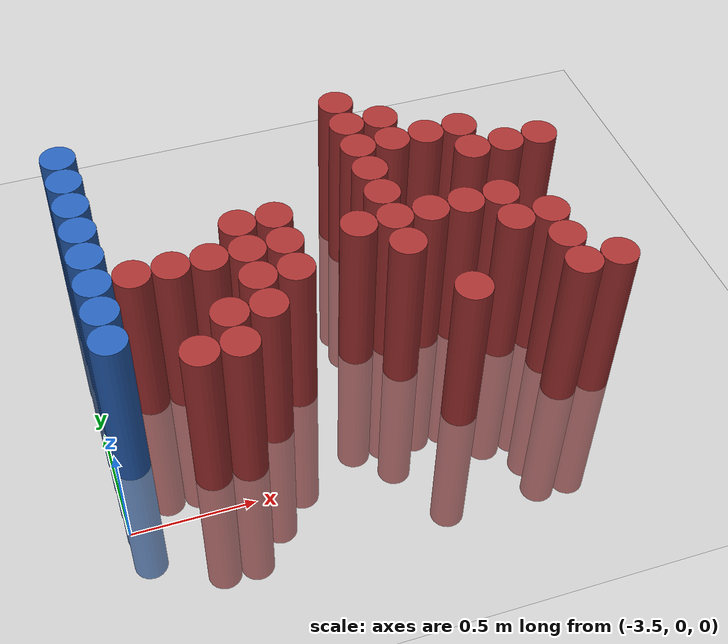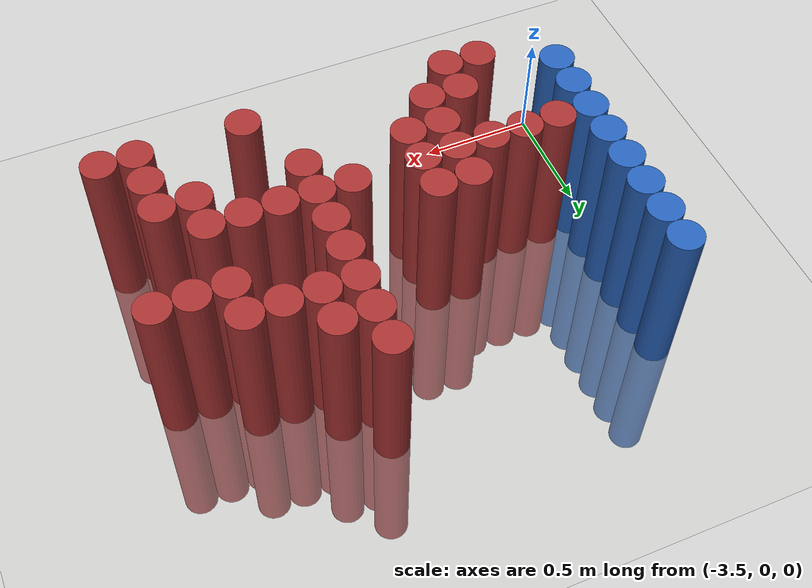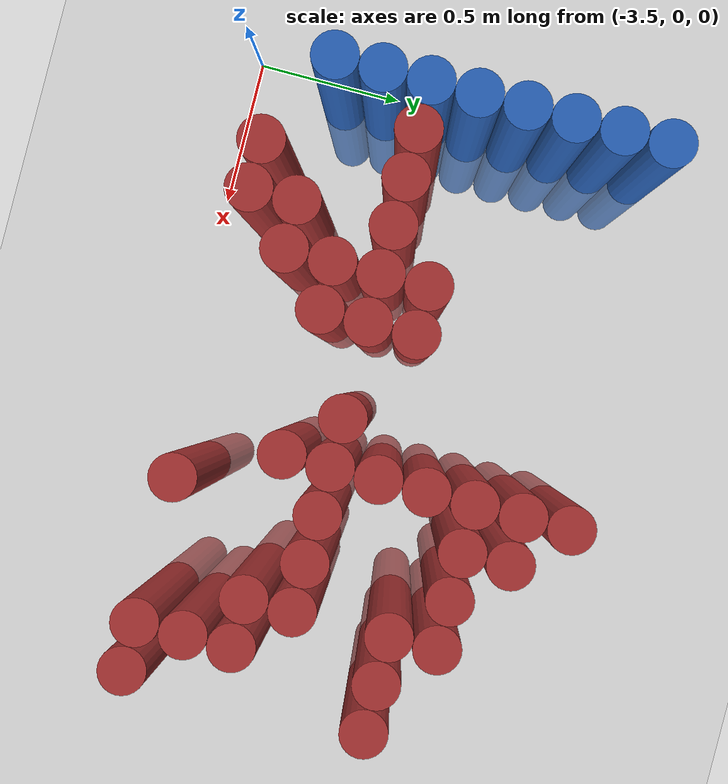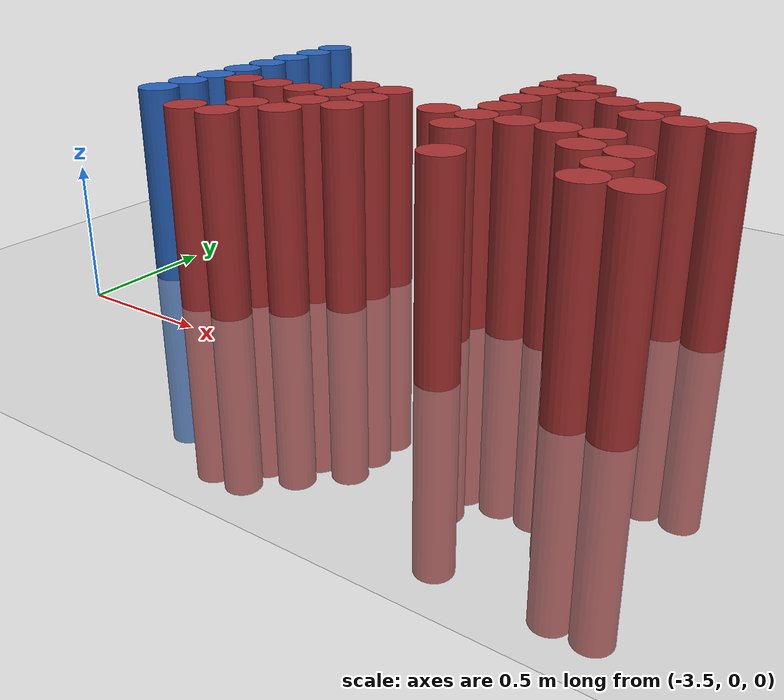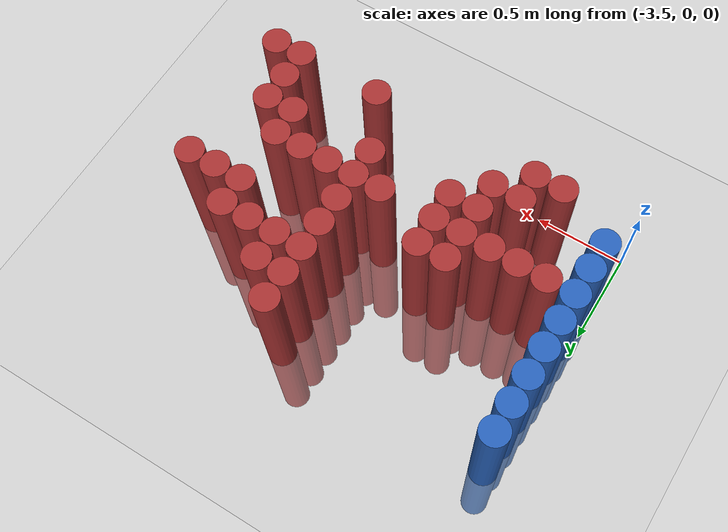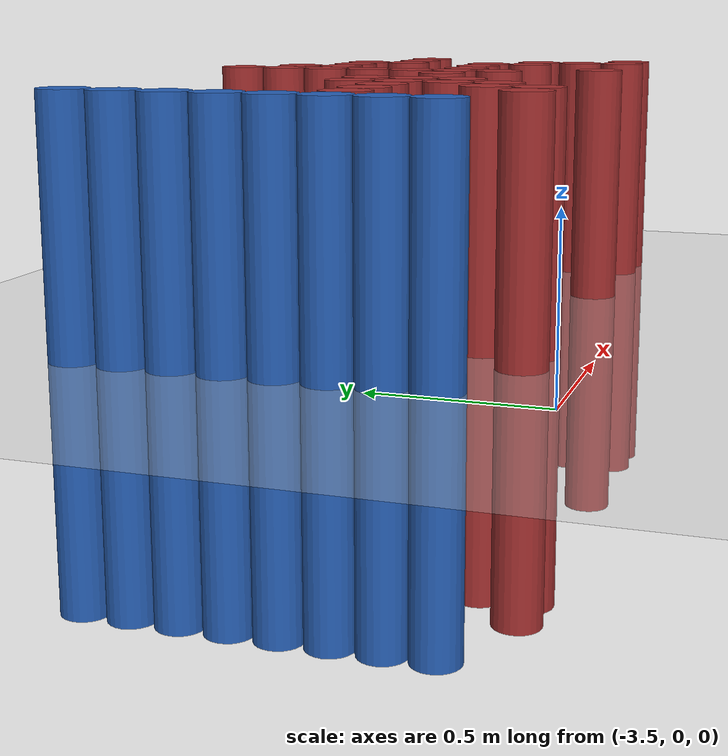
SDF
<sdf version="1.6">
 <world name="default">
  <model name="ground_plane">
   <static>1</static>
   <link name="link">
    <collision name="collision">
     <geometry><plane><normal>0 0 1</normal><size>100 100</size></plane></geometry>
     <surface><friction><ode><mu>100</mu><mu2>50</mu2></ode></friction></surface>
    </collision>
    <visual name="visual">
     <cast_shadows>0</cast_shadows>
     <geometry><plane><normal>0 0 1</normal><size>100 100</size></plane></geometry>
     <material>
      <script><uri>file://media/materials/scripts/gazebo.material</uri><name>Gazebo/Grey</name></script>
     </material>
    </visual>
   </link>
  </model>
  <model name="unit_cylinder_119">
   <static>1</static>
   <pose>-3.425000 0.325000 0.000000 0.000000 0.000000 0.000000</pose>
   <link name="link">
    <inertial>
     <mass>1</mass>
     <inertia><ixx>0.145833</ixx><ixy>0</ixy><ixz>0</ixz><iyy>0.145833</iyy><iyz>0</iyz><izz>0.125</izz></inertia>
    </inertial>
    <collision name="collision">
     <geometry><cylinder><radius>0.075000</radius><length>1.5</length></cylinder></geometry>
    </collision>
    <visual name="visual">
     <geometry><cylinder><radius>0.075000</radius><length>1.5</length></cylinder></geometry>
     <material>
      <ambient>0.152000 0.379000 0.720000 1</ambient>
      <diffuse>0.152000 0.379000 0.720000 1</diffuse>
     </material>
     <material>
      <script><name>Gazebo/Grey</name><uri>file://media/materials/scripts/gazebo.material</uri></script>
     </material>
    </visual>
   </link>
  </model>
  <model name="unit_cylinder_121">
   <static>1</static>
   <pose>-3.425000 0.475000 0.000000 0.000000 0.000000 0.000000</pose>
   <link name="link">
    <inertial>
     <mass>1</mass>
     <inertia><ixx>0.145833</ixx><ixy>0</ixy><ixz>0</ixz><iyy>0.145833</iyy><iyz>0</iyz><izz>0.125</izz></inertia>
    </inertial>
    <collision name="collision">
     <geometry><cylinder><radius>0.075000</radius><length>1.5</length></cylinder></geometry>
    </collision>
    <visual name="visual">
     <geometry><cylinder><radius>0.075000</radius><length>1.5</length></cylinder></geometry>
     <material>
      <ambient>0.152000 0.379000 0.720000 1</ambient>
      <diffuse>0.152000 0.379000 0.720000 1</diffuse>
     </material>
     <material>
      <script><name>Gazebo/Grey</name><uri>file://media/materials/scripts/gazebo.material</uri></script>
     </material>
    </visual>
   </link>
  </model>
  <model name="unit_cylinder_123">
   <static>1</static>
   <pose>-3.425000 0.625000 0.000000 0.000000 0.000000 0.000000</pose>
   <link name="link">
    <inertial>
     <mass>1</mass>
     <inertia><ixx>0.145833</ixx><ixy>0</ixy><ixz>0</ixz><iyy>0.145833</iyy><iyz>0</iyz><izz>0.125</izz></inertia>
    </inertial>
    <collision name="collision">
     <geometry><cylinder><radius>0.075000</radius><length>1.5</length></cylinder></geometry>
    </collision>
    <visual name="visual">
     <geometry><cylinder><radius>0.075000</radius><length>1.5</length></cylinder></geometry>
     <material>
      <ambient>0.152000 0.379000 0.720000 1</ambient>
      <diffuse>0.152000 0.379000 0.720000 1</diffuse>
     </material>
     <material>
      <script><name>Gazebo/Grey</name><uri>file://media/materials/scripts/gazebo.material</uri></script>
     </material>
    </visual>
   </link>
  </model>
  <model name="unit_cylinder_125">
   <static>1</static>
   <pose>-3.425000 0.775000 0.000000 0.000000 0.000000 0.000000</pose>
   <link name="link">
    <inertial>
     <mass>1</mass>
     <inertia><ixx>0.145833</ixx><ixy>0</ixy><ixz>0</ixz><iyy>0.145833</iyy><iyz>0</iyz><izz>0.125</izz></inertia>
    </inertial>
    <collision name="collision">
     <geometry><cylinder><radius>0.075000</radius><length>1.5</length></cylinder></geometry>
    </collision>
    <visual name="visual">
     <geometry><cylinder><radius>0.075000</radius><length>1.5</length></cylinder></geometry>
     <material>
      <ambient>0.152000 0.379000 0.720000 1</ambient>
      <diffuse>0.152000 0.379000 0.720000 1</diffuse>
     </material>
     <material>
      <script><name>Gazebo/Grey</name><uri>file://media/materials/scripts/gazebo.material</uri></script>
     </material>
    </visual>
   </link>
  </model>
  <model name="unit_cylinder_127">
   <static>1</static>
   <pose>-3.425000 0.925000 0.000000 0.000000 0.000000 0.000000</pose>
   <link name="link">
    <inertial>
     <mass>1</mass>
     <inertia><ixx>0.145833</ixx><ixy>0</ixy><ixz>0</ixz><iyy>0.145833</iyy><iyz>0</iyz><izz>0.125</izz></inertia>
    </inertial>
    <collision name="collision">
     <geometry><cylinder><radius>0.075000</radius><length>1.5</length></cylinder></geometry>
    </collision>
    <visual name="visual">
     <geometry><cylinder><radius>0.075000</radius><length>1.5</length></cylinder></geometry>
     <material>
      <ambient>0.152000 0.379000 0.720000 1</ambient>
      <diffuse>0.152000 0.379000 0.720000 1</diffuse>
     </material>
     <material>
      <script><name>Gazebo/Grey</name><uri>file://media/materials/scripts/gazebo.material</uri></script>
     </material>
    </visual>
   </link>
  </model>
  <model name="unit_cylinder_129">
   <static>1</static>
   <pose>-3.425000 1.075000 0.000000 0.000000 0.000000 0.000000</pose>
   <link name="link">
    <inertial>
     <mass>1</mass>
     <inertia><ixx>0.145833</ixx><ixy>0</ixy><ixz>0</ixz><iyy>0.145833</iyy><iyz>0</iyz><izz>0.125</izz></inertia>
    </inertial>
    <collision name="collision">
     <geometry><cylinder><radius>0.075000</radius><length>1.5</length></cylinder></geometry>
    </collision>
    <visual name="visual">
     <geometry><cylinder><radius>0.075000</radius><length>1.5</length></cylinder></geometry>
     <material>
      <ambient>0.152000 0.379000 0.720000 1</ambient>
      <diffuse>0.152000 0.379000 0.720000 1</diffuse>
     </material>
     <material>
      <script><name>Gazebo/Grey</name><uri>file://media/materials/scripts/gazebo.material</uri></script>
     </material>
    </visual>
   </link>
  </model>
  <model name="unit_cylinder_131">
   <static>1</static>
   <pose>-3.425000 1.225000 0.000000 0.000000 0.000000 0.000000</pose>
   <link name="link">
    <inertial>
     <mass>1</mass>
     <inertia><ixx>0.145833</ixx><ixy>0</ixy><ixz>0</ixz><iyy>0.145833</iyy><iyz>0</iyz><izz>0.125</izz></inertia>
    </inertial>
    <collision name="collision">
     <geometry><cylinder><radius>0.075000</radius><length>1.5</length></cylinder></geometry>
    </collision>
    <visual name="visual">
     <geometry><cylinder><radius>0.075000</radius><length>1.5</length></cylinder></geometry>
     <material>
      <ambient>0.152000 0.379000 0.720000 1</ambient>
      <diffuse>0.152000 0.379000 0.720000 1</diffuse>
     </material>
     <material>
      <script><name>Gazebo/Grey</name><uri>file://media/materials/scripts/gazebo.material</uri></script>
     </material>
    </visual>
   </link>
  </model>
  <model name="unit_cylinder_133">
   <static>1</static>
   <pose>-3.425000 1.375000 0.000000 0.000000 0.000000 0.000000</pose>
   <link name="link">
    <inertial>
     <mass>1</mass>
     <inertia><ixx>0.145833</ixx><ixy>0</ixy><ixz>0</ixz><iyy>0.145833</iyy><iyz>0</iyz><izz>0.125</izz></inertia>
    </inertial>
    <collision name="collision">
     <geometry><cylinder><radius>0.075000</radius><length>1.5</length></cylinder></geometry>
    </collision>
    <visual name="visual">
     <geometry><cylinder><radius>0.075000</radius><length>1.5</length></cylinder></geometry>
     <material>
      <ambient>0.152000 0.379000 0.720000 1</ambient>
      <diffuse>0.152000 0.379000 0.720000 1</diffuse>
     </material>
     <material>
      <script><name>Gazebo/Grey</name><uri>file://media/materials/scripts/gazebo.material</uri></script>
     </material>
    </visual>
   </link>
  </model>
  <model name="unit_cylinder_223">
   <static>1</static>
   <pose>-3.425000 0.325000 0.000000 0.000000 0.000000 0.000000</pose>
   <link name="link">
    <inertial>
     <mass>1</mass>
     <inertia><ixx>0.145833</ixx><ixy>0</ixy><ixz>0</ixz><iyy>0.145833</iyy><iyz>0</iyz><izz>0.125</izz></inertia>
    </inertial>
    <collision name="collision">
     <geometry><cylinder><radius>0.075000</radius><length>1.5</length></cylinder></geometry>
    </collision>
    <visual name="visual">
     <geometry><cylinder><radius>0.075000</radius><length>1.5</length></cylinder></geometry>
     <material>
      <ambient>0.152000 0.379000 0.720000 1</ambient>
      <diffuse>0.152000 0.379000 0.720000 1</diffuse>
     </material>
     <material>
      <script><name>Gazebo/Grey</name><uri>file://media/materials/scripts/gazebo.material</uri></script>
     </material>
    </visual>
   </link>
  </model>
  <model name="unit_cylinder_224">
   <static>1</static>
   <pose>-3.425000 0.475000 0.000000 0.000000 0.000000 0.000000</pose>
   <link name="link">
    <inertial>
     <mass>1</mass>
     <inertia><ixx>0.145833</ixx><ixy>0</ixy><ixz>0</ixz><iyy>0.145833</iyy><iyz>0</iyz><izz>0.125</izz></inertia>
    </inertial>
    <collision name="collision">
     <geometry><cylinder><radius>0.075000</radius><length>1.5</length></cylinder></geometry>
    </collision>
    <visual name="visual">
     <geometry><cylinder><radius>0.075000</radius><length>1.5</length></cylinder></geometry>
     <material>
      <ambient>0.152000 0.379000 0.720000 1</ambient>
      <diffuse>0.152000 0.379000 0.720000 1</diffuse>
     </material>
     <material>
      <script><name>Gazebo/Grey</name><uri>file://media/materials/scripts/gazebo.material</uri></script>
     </material>
    </visual>
   </link>
  </model>
  <model name="unit_cylinder_225">
   <static>1</static>
   <pose>-3.425000 0.625000 0.000000 0.000000 0.000000 0.000000</pose>
   <link name="link">
    <inertial>
     <mass>1</mass>
     <inertia><ixx>0.145833</ixx><ixy>0</ixy><ixz>0</ixz><iyy>0.145833</iyy><iyz>0</iyz><izz>0.125</izz></inertia>
    </inertial>
    <collision name="collision">
     <geometry><cylinder><radius>0.075000</radius><length>1.5</length></cylinder></geometry>
    </collision>
    <visual name="visual">
     <geometry><cylinder><radius>0.075000</radius><length>1.5</length></cylinder></geometry>
     <material>
      <ambient>0.152000 0.379000 0.720000 1</ambient>
      <diffuse>0.152000 0.379000 0.720000 1</diffuse>
     </material>
     <material>
      <script><name>Gazebo/Grey</name><uri>file://media/materials/scripts/gazebo.material</uri></script>
     </material>
    </visual>
   </link>
  </model>
  <model name="unit_cylinder_226">
   <static>1</static>
   <pose>-3.425000 0.775000 0.000000 0.000000 0.000000 0.000000</pose>
   <link name="link">
    <inertial>
     <mass>1</mass>
     <inertia><ixx>0.145833</ixx><ixy>0</ixy><ixz>0</ixz><iyy>0.145833</iyy><iyz>0</iyz><izz>0.125</izz></inertia>
    </inertial>
    <collision name="collision">
     <geometry><cylinder><radius>0.075000</radius><length>1.5</length></cylinder></geometry>
    </collision>
    <visual name="visual">
     <geometry><cylinder><radius>0.075000</radius><length>1.5</length></cylinder></geometry>
     <material>
      <ambient>0.152000 0.379000 0.720000 1</ambient>
      <diffuse>0.152000 0.379000 0.720000 1</diffuse>
     </material>
     <material>
      <script><name>Gazebo/Grey</name><uri>file://media/materials/scripts/gazebo.material</uri></script>
     </material>
    </visual>
   </link>
  </model>
  <model name="unit_cylinder_227">
   <static>1</static>
   <pose>-3.425000 0.925000 0.000000 0.000000 0.000000 0.000000</pose>
   <link name="link">
    <inertial>
     <mass>1</mass>
     <inertia><ixx>0.145833</ixx><ixy>0</ixy><ixz>0</ixz><iyy>0.145833</iyy><iyz>0</iyz><izz>0.125</izz></inertia>
    </inertial>
    <collision name="collision">
     <geometry><cylinder><radius>0.075000</radius><length>1.5</length></cylinder></geometry>
    </collision>
    <visual name="visual">
     <geometry><cylinder><radius>0.075000</radius><length>1.5</length></cylinder></geometry>
     <material>
      <ambient>0.152000 0.379000 0.720000 1</ambient>
      <diffuse>0.152000 0.379000 0.720000 1</diffuse>
     </material>
     <material>
      <script><name>Gazebo/Grey</name><uri>file://media/materials/scripts/gazebo.material</uri></script>
     </material>
    </visual>
   </link>
  </model>
  <model name="unit_cylinder_228">
   <static>1</static>
   <pose>-3.425000 1.075000 0.000000 0.000000 0.000000 0.000000</pose>
   <link name="link">
    <inertial>
     <mass>1</mass>
     <inertia><ixx>0.145833</ixx><ixy>0</ixy><ixz>0</ixz><iyy>0.145833</iyy><iyz>0</iyz><izz>0.125</izz></inertia>
    </inertial>
    <collision name="collision">
     <geometry><cylinder><radius>0.075000</radius><length>1.5</length></cylinder></geometry>
    </collision>
    <visual name="visual">
     <geometry><cylinder><radius>0.075000</radius><length>1.5</length></cylinder></geometry>
     <material>
      <ambient>0.152000 0.379000 0.720000 1</ambient>
      <diffuse>0.152000 0.379000 0.720000 1</diffuse>
     </material>
     <material>
      <script><name>Gazebo/Grey</name><uri>file://media/materials/scripts/gazebo.material</uri></script>
     </material>
    </visual>
   </link>
  </model>
  <model name="unit_cylinder_229">
   <static>1</static>
   <pose>-3.425000 1.225000 0.000000 0.000000 0.000000 0.000000</pose>
   <link name="link">
    <inertial>
     <mass>1</mass>
     <inertia><ixx>0.145833</ixx><ixy>0</ixy><ixz>0</ixz><iyy>0.145833</iyy><iyz>0</iyz><izz>0.125</izz></inertia>
    </inertial>
    <collision name="collision">
     <geometry><cylinder><radius>0.075000</radius><length>1.5</length></cylinder></geometry>
    </collision>
    <visual name="visual">
     <geometry><cylinder><radius>0.075000</radius><length>1.5</length></cylinder></geometry>
     <material>
      <ambient>0.152000 0.379000 0.720000 1</ambient>
      <diffuse>0.152000 0.379000 0.720000 1</diffuse>
     </material>
     <material>
      <script><name>Gazebo/Grey</name><uri>file://media/materials/scripts/gazebo.material</uri></script>
     </material>
    </visual>
   </link>
  </model>
  <model name="unit_cylinder_230">
   <static>1</static>
   <pose>-3.425000 1.375000 0.000000 0.000000 0.000000 0.000000</pose>
   <link name="link">
    <inertial>
     <mass>1</mass>
     <inertia><ixx>0.145833</ixx><ixy>0</ixy><ixz>0</ixz><iyy>0.145833</iyy><iyz>0</iyz><izz>0.125</izz></inertia>
    </inertial>
    <collision name="collision">
     <geometry><cylinder><radius>0.075000</radius><length>1.5</length></cylinder></geometry>
    </collision>
    <visual name="visual">
     <geometry><cylinder><radius>0.075000</radius><length>1.5</length></cylinder></geometry>
     <material>
      <ambient>0.152000 0.379000 0.720000 1</ambient>
      <diffuse>0.152000 0.379000 0.720000 1</diffuse>
     </material>
     <material>
      <script><name>Gazebo/Grey</name><uri>file://media/materials/scripts/gazebo.material</uri></script>
     </material>
    </visual>
   </link>
  </model>
  <model name="unit_cylinder_267">
   <static>1</static>
   <pose>-3.275000 0.625000 0.000000 0.000000 0.000000 0.000000</pose>
   <link name="link">
    <inertial>
     <mass>1</mass>
     <inertia><ixx>0.145833</ixx><ixy>0</ixy><ixz>0</ixz><iyy>0.145833</iyy><iyz>0</iyz><izz>0.125</izz></inertia>
    </inertial>
    <collision name="collision">
     <geometry><cylinder><radius>0.075000</radius><length>1.5</length></cylinder></geometry>
    </collision>
    <visual name="visual">
     <geometry><cylinder><radius>0.075000</radius><length>1.5</length></cylinder></geometry>
     <material>
      <ambient>0.648000 0.192000 0.192000 1</ambient>
      <diffuse>0.648000 0.192000 0.192000 1</diffuse>
     </material>
     <material>
      <script><name>Gazebo/Grey</name><uri>file://media/materials/scripts/gazebo.material</uri></script>
     </material>
    </visual>
   </link>
  </model>
  <model name="unit_cylinder_282">
   <static>1</static>
   <pose>-3.125000 0.175000 0.000000 0.000000 0.000000 0.000000</pose>
   <link name="link">
    <inertial>
     <mass>1</mass>
     <inertia><ixx>0.145833</ixx><ixy>0</ixy><ixz>0</ixz><iyy>0.145833</iyy><iyz>0</iyz><izz>0.125</izz></inertia>
    </inertial>
    <collision name="collision">
     <geometry><cylinder><radius>0.075000</radius><length>1.5</length></cylinder></geometry>
    </collision>
    <visual name="visual">
     <geometry><cylinder><radius>0.075000</radius><length>1.5</length></cylinder></geometry>
     <material>
      <ambient>0.648000 0.192000 0.192000 1</ambient>
      <diffuse>0.648000 0.192000 0.192000 1</diffuse>
     </material>
     <material>
      <script><name>Gazebo/Grey</name><uri>file://media/materials/scripts/gazebo.material</uri></script>
     </material>
    </visual>
   </link>
  </model>
  <model name="unit_cylinder_283">
   <static>1</static>
   <pose>-3.125000 0.625000 0.000000 0.000000 0.000000 0.000000</pose>
   <link name="link">
    <inertial>
     <mass>1</mass>
     <inertia><ixx>0.145833</ixx><ixy>0</ixy><ixz>0</ixz><iyy>0.145833</iyy><iyz>0</iyz><izz>0.125</izz></inertia>
    </inertial>
    <collision name="collision">
     <geometry><cylinder><radius>0.075000</radius><length>1.5</length></cylinder></geometry>
    </collision>
    <visual name="visual">
     <geometry><cylinder><radius>0.075000</radius><length>1.5</length></cylinder></geometry>
     <material>
      <ambient>0.648000 0.192000 0.192000 1</ambient>
      <diffuse>0.648000 0.192000 0.192000 1</diffuse>
     </material>
     <material>
      <script><name>Gazebo/Grey</name><uri>file://media/materials/scripts/gazebo.material</uri></script>
     </material>
    </visual>
   </link>
  </model>
  <model name="unit_cylinder_294">
   <static>1</static>
   <pose>-2.975000 0.175000 0.000000 0.000000 0.000000 0.000000</pose>
   <link name="link">
    <inertial>
     <mass>1</mass>
     <inertia><ixx>0.145833</ixx><ixy>0</ixy><ixz>0</ixz><iyy>0.145833</iyy><iyz>0</iyz><izz>0.125</izz></inertia>
    </inertial>
    <collision name="collision">
     <geometry><cylinder><radius>0.075000</radius><length>1.5</length></cylinder></geometry>
    </collision>
    <visual name="visual">
     <geometry><cylinder><radius>0.075000</radius><length>1.5</length></cylinder></geometry>
     <material>
      <ambient>0.648000 0.192000 0.192000 1</ambient>
      <diffuse>0.648000 0.192000 0.192000 1</diffuse>
     </material>
     <material>
      <script><name>Gazebo/Grey</name><uri>file://media/materials/scripts/gazebo.material</uri></script>
     </material>
    </visual>
   </link>
  </model>
  <model name="unit_cylinder_295">
   <static>1</static>
   <pose>-2.975000 0.325000 0.000000 0.000000 0.000000 0.000000</pose>
   <link name="link">
    <inertial>
     <mass>1</mass>
     <inertia><ixx>0.145833</ixx><ixy>0</ixy><ixz>0</ixz><iyy>0.145833</iyy><iyz>0</iyz><izz>0.125</izz></inertia>
    </inertial>
    <collision name="collision">
     <geometry><cylinder><radius>0.075000</radius><length>1.5</length></cylinder></geometry>
    </collision>
    <visual name="visual">
     <geometry><cylinder><radius>0.075000</radius><length>1.5</length></cylinder></geometry>
     <material>
      <ambient>0.648000 0.192000 0.192000 1</ambient>
      <diffuse>0.648000 0.192000 0.192000 1</diffuse>
     </material>
     <material>
      <script><name>Gazebo/Grey</name><uri>file://media/materials/scripts/gazebo.material</uri></script>
     </material>
    </visual>
   </link>
  </model>
  <model name="unit_cylinder_296">
   <static>1</static>
   <pose>-2.975000 0.625000 0.000000 0.000000 0.000000 0.000000</pose>
   <link name="link">
    <inertial>
     <mass>1</mass>
     <inertia><ixx>0.145833</ixx><ixy>0</ixy><ixz>0</ixz><iyy>0.145833</iyy><iyz>0</iyz><izz>0.125</izz></inertia>
    </inertial>
    <collision name="collision">
     <geometry><cylinder><radius>0.075000</radius><length>1.5</length></cylinder></geometry>
    </collision>
    <visual name="visual">
     <geometry><cylinder><radius>0.075000</radius><length>1.5</length></cylinder></geometry>
     <material>
      <ambient>0.648000 0.192000 0.192000 1</ambient>
      <diffuse>0.648000 0.192000 0.192000 1</diffuse>
     </material>
     <material>
      <script><name>Gazebo/Grey</name><uri>file://media/materials/scripts/gazebo.material</uri></script>
     </material>
    </visual>
   </link>
  </model>
  <model name="unit_cylinder_307">
   <static>1</static>
   <pose>-2.825000 0.325000 0.000000 0.000000 0.000000 0.000000</pose>
   <link name="link">
    <inertial>
     <mass>1</mass>
     <inertia><ixx>0.145833</ixx><ixy>0</ixy><ixz>0</ixz><iyy>0.145833</iyy><iyz>0</iyz><izz>0.125</izz></inertia>
    </inertial>
    <collision name="collision">
     <geometry><cylinder><radius>0.075000</radius><length>1.5</length></cylinder></geometry>
    </collision>
    <visual name="visual">
     <geometry><cylinder><radius>0.075000</radius><length>1.5</length></cylinder></geometry>
     <material>
      <ambient>0.648000 0.192000 0.192000 1</ambient>
      <diffuse>0.648000 0.192000 0.192000 1</diffuse>
     </material>
     <material>
      <script><name>Gazebo/Grey</name><uri>file://media/materials/scripts/gazebo.material</uri></script>
     </material>
    </visual>
   </link>
  </model>
  <model name="unit_cylinder_308">
   <static>1</static>
   <pose>-2.825000 0.475000 0.000000 0.000000 0.000000 0.000000</pose>
   <link name="link">
    <inertial>
     <mass>1</mass>
     <inertia><ixx>0.145833</ixx><ixy>0</ixy><ixz>0</ixz><iyy>0.145833</iyy><iyz>0</iyz><izz>0.125</izz></inertia>
    </inertial>
    <collision name="collision">
     <geometry><cylinder><radius>0.075000</radius><length>1.5</length></cylinder></geometry>
    </collision>
    <visual name="visual">
     <geometry><cylinder><radius>0.075000</radius><length>1.5</length></cylinder></geometry>
     <material>
      <ambient>0.648000 0.192000 0.192000 1</ambient>
      <diffuse>0.648000 0.192000 0.192000 1</diffuse>
     </material>
     <material>
      <script><name>Gazebo/Grey</name><uri>file://media/materials/scripts/gazebo.material</uri></script>
     </material>
    </visual>
   </link>
  </model>
  <model name="unit_cylinder_309">
   <static>1</static>
   <pose>-2.825000 0.625000 0.000000 0.000000 0.000000 0.000000</pose>
   <link name="link">
    <inertial>
     <mass>1</mass>
     <inertia><ixx>0.145833</ixx><ixy>0</ixy><ixz>0</ixz><iyy>0.145833</iyy><iyz>0</iyz><izz>0.125</izz></inertia>
    </inertial>
    <collision name="collision">
     <geometry><cylinder><radius>0.075000</radius><length>1.5</length></cylinder></geometry>
    </collision>
    <visual name="visual">
     <geometry><cylinder><radius>0.075000</radius><length>1.5</length></cylinder></geometry>
     <material>
      <ambient>0.648000 0.192000 0.192000 1</ambient>
      <diffuse>0.648000 0.192000 0.192000 1</diffuse>
     </material>
     <material>
      <script><name>Gazebo/Grey</name><uri>file://media/materials/scripts/gazebo.material</uri></script>
     </material>
    </visual>
   </link>
  </model>
  <model name="unit_cylinder_310">
   <static>1</static>
   <pose>-2.825000 0.775000 0.000000 0.000000 0.000000 0.000000</pose>
   <link name="link">
    <inertial>
     <mass>1</mass>
     <inertia><ixx>0.145833</ixx><ixy>0</ixy><ixz>0</ixz><iyy>0.145833</iyy><iyz>0</iyz><izz>0.125</izz></inertia>
    </inertial>
    <collision name="collision">
     <geometry><cylinder><radius>0.075000</radius><length>1.5</length></cylinder></geometry>
    </collision>
    <visual name="visual">
     <geometry><cylinder><radius>0.075000</radius><length>1.5</length></cylinder></geometry>
     <material>
      <ambient>0.648000 0.192000 0.192000 1</ambient>
      <diffuse>0.648000 0.192000 0.192000 1</diffuse>
     </material>
     <material>
      <script><name>Gazebo/Grey</name><uri>file://media/materials/scripts/gazebo.material</uri></script>
     </material>
    </visual>
   </link>
  </model>
  <model name="unit_cylinder_322">
   <static>1</static>
   <pose>-2.675000 0.475000 0.000000 0.000000 0.000000 0.000000</pose>
   <link name="link">
    <inertial>
     <mass>1</mass>
     <inertia><ixx>0.145833</ixx><ixy>0</ixy><ixz>0</ixz><iyy>0.145833</iyy><iyz>0</iyz><izz>0.125</izz></inertia>
    </inertial>
    <collision name="collision">
     <geometry><cylinder><radius>0.075000</radius><length>1.5</length></cylinder></geometry>
    </collision>
    <visual name="visual">
     <geometry><cylinder><radius>0.075000</radius><length>1.5</length></cylinder></geometry>
     <material>
      <ambient>0.648000 0.192000 0.192000 1</ambient>
      <diffuse>0.648000 0.192000 0.192000 1</diffuse>
     </material>
     <material>
      <script><name>Gazebo/Grey</name><uri>file://media/materials/scripts/gazebo.material</uri></script>
     </material>
    </visual>
   </link>
  </model>
  <model name="unit_cylinder_323">
   <static>1</static>
   <pose>-2.675000 0.625000 0.000000 0.000000 0.000000 0.000000</pose>
   <link name="link">
    <inertial>
     <mass>1</mass>
     <inertia><ixx>0.145833</ixx><ixy>0</ixy><ixz>0</ixz><iyy>0.145833</iyy><iyz>0</iyz><izz>0.125</izz></inertia>
    </inertial>
    <collision name="collision">
     <geometry><cylinder><radius>0.075000</radius><length>1.5</length></cylinder></geometry>
    </collision>
    <visual name="visual">
     <geometry><cylinder><radius>0.075000</radius><length>1.5</length></cylinder></geometry>
     <material>
      <ambient>0.648000 0.192000 0.192000 1</ambient>
      <diffuse>0.648000 0.192000 0.192000 1</diffuse>
     </material>
     <material>
      <script><name>Gazebo/Grey</name><uri>file://media/materials/scripts/gazebo.material</uri></script>
     </material>
    </visual>
   </link>
  </model>
  <model name="unit_cylinder_324">
   <static>1</static>
   <pose>-2.675000 0.775000 0.000000 0.000000 0.000000 0.000000</pose>
   <link name="link">
    <inertial>
     <mass>1</mass>
     <inertia><ixx>0.145833</ixx><ixy>0</ixy><ixz>0</ixz><iyy>0.145833</iyy><iyz>0</iyz><izz>0.125</izz></inertia>
    </inertial>
    <collision name="collision">
     <geometry><cylinder><radius>0.075000</radius><length>1.5</length></cylinder></geometry>
    </collision>
    <visual name="visual">
     <geometry><cylinder><radius>0.075000</radius><length>1.5</length></cylinder></geometry>
     <material>
      <ambient>0.648000 0.192000 0.192000 1</ambient>
      <diffuse>0.648000 0.192000 0.192000 1</diffuse>
     </material>
     <material>
      <script><name>Gazebo/Grey</name><uri>file://media/materials/scripts/gazebo.material</uri></script>
     </material>
    </visual>
   </link>
  </model>
  <model name="unit_cylinder_340">
   <static>1</static>
   <pose>-2.375000 0.625000 0.000000 0.000000 0.000000 0.000000</pose>
   <link name="link">
    <inertial>
     <mass>1</mass>
     <inertia><ixx>0.145833</ixx><ixy>0</ixy><ixz>0</ixz><iyy>0.145833</iyy><iyz>0</iyz><izz>0.125</izz></inertia>
    </inertial>
    <collision name="collision">
     <geometry><cylinder><radius>0.075000</radius><length>1.5</length></cylinder></geometry>
    </collision>
    <visual name="visual">
     <geometry><cylinder><radius>0.075000</radius><length>1.5</length></cylinder></geometry>
     <material>
      <ambient>0.648000 0.192000 0.192000 1</ambient>
      <diffuse>0.648000 0.192000 0.192000 1</diffuse>
     </material>
     <material>
      <script><name>Gazebo/Grey</name><uri>file://media/materials/scripts/gazebo.material</uri></script>
     </material>
    </visual>
   </link>
  </model>
  <model name="unit_cylinder_348">
   <static>1</static>
   <pose>-2.225000 0.475000 0.000000 0.000000 0.000000 0.000000</pose>
   <link name="link">
    <inertial>
     <mass>1</mass>
     <inertia><ixx>0.145833</ixx><ixy>0</ixy><ixz>0</ixz><iyy>0.145833</iyy><iyz>0</iyz><izz>0.125</izz></inertia>
    </inertial>
    <collision name="collision">
     <geometry><cylinder><radius>0.075000</radius><length>1.5</length></cylinder></geometry>
    </collision>
    <visual name="visual">
     <geometry><cylinder><radius>0.075000</radius><length>1.5</length></cylinder></geometry>
     <material>
      <ambient>0.648000 0.192000 0.192000 1</ambient>
      <diffuse>0.648000 0.192000 0.192000 1</diffuse>
     </material>
     <material>
      <script><name>Gazebo/Grey</name><uri>file://media/materials/scripts/gazebo.material</uri></script>
     </material>
    </visual>
   </link>
  </model>
  <model name="unit_cylinder_349">
   <static>1</static>
   <pose>-2.225000 0.625000 0.000000 0.000000 0.000000 0.000000</pose>
   <link name="link">
    <inertial>
     <mass>1</mass>
     <inertia><ixx>0.145833</ixx><ixy>0</ixy><ixz>0</ixz><iyy>0.145833</iyy><iyz>0</iyz><izz>0.125</izz></inertia>
    </inertial>
    <collision name="collision">
     <geometry><cylinder><radius>0.075000</radius><length>1.5</length></cylinder></geometry>
    </collision>
    <visual name="visual">
     <geometry><cylinder><radius>0.075000</radius><length>1.5</length></cylinder></geometry>
     <material>
      <ambient>0.648000 0.192000 0.192000 1</ambient>
      <diffuse>0.648000 0.192000 0.192000 1</diffuse>
     </material>
     <material>
      <script><name>Gazebo/Grey</name><uri>file://media/materials/scripts/gazebo.material</uri></script>
     </material>
    </visual>
   </link>
  </model>
  <model name="unit_cylinder_350">
   <static>1</static>
   <pose>-2.225000 0.775000 0.000000 0.000000 0.000000 0.000000</pose>
   <link name="link">
    <inertial>
     <mass>1</mass>
     <inertia><ixx>0.145833</ixx><ixy>0</ixy><ixz>0</ixz><iyy>0.145833</iyy><iyz>0</iyz><izz>0.125</izz></inertia>
    </inertial>
    <collision name="collision">
     <geometry><cylinder><radius>0.075000</radius><length>1.5</length></cylinder></geometry>
    </collision>
    <visual name="visual">
     <geometry><cylinder><radius>0.075000</radius><length>1.5</length></cylinder></geometry>
     <material>
      <ambient>0.648000 0.192000 0.192000 1</ambient>
      <diffuse>0.648000 0.192000 0.192000 1</diffuse>
     </material>
     <material>
      <script><name>Gazebo/Grey</name><uri>file://media/materials/scripts/gazebo.material</uri></script>
     </material>
    </visual>
   </link>
  </model>
  <model name="unit_cylinder_351">
   <static>1</static>
   <pose>-2.225000 0.925000 0.000000 0.000000 0.000000 0.000000</pose>
   <link name="link">
    <inertial>
     <mass>1</mass>
     <inertia><ixx>0.145833</ixx><ixy>0</ixy><ixz>0</ixz><iyy>0.145833</iyy><iyz>0</iyz><izz>0.125</izz></inertia>
    </inertial>
    <collision name="collision">
     <geometry><cylinder><radius>0.075000</radius><length>1.5</length></cylinder></geometry>
    </collision>
    <visual name="visual">
     <geometry><cylinder><radius>0.075000</radius><length>1.5</length></cylinder></geometry>
     <material>
      <ambient>0.648000 0.192000 0.192000 1</ambient>
      <diffuse>0.648000 0.192000 0.192000 1</diffuse>
     </material>
     <material>
      <script><name>Gazebo/Grey</name><uri>file://media/materials/scripts/gazebo.material</uri></script>
     </material>
    </visual>
   </link>
  </model>
  <model name="unit_cylinder_352">
   <static>1</static>
   <pose>-2.225000 1.075000 0.000000 0.000000 0.000000 0.000000</pose>
   <link name="link">
    <inertial>
     <mass>1</mass>
     <inertia><ixx>0.145833</ixx><ixy>0</ixy><ixz>0</ixz><iyy>0.145833</iyy><iyz>0</iyz><izz>0.125</izz></inertia>
    </inertial>
    <collision name="collision">
     <geometry><cylinder><radius>0.075000</radius><length>1.5</length></cylinder></geometry>
    </collision>
    <visual name="visual">
     <geometry><cylinder><radius>0.075000</radius><length>1.5</length></cylinder></geometry>
     <material>
      <ambient>0.648000 0.192000 0.192000 1</ambient>
      <diffuse>0.648000 0.192000 0.192000 1</diffuse>
     </material>
     <material>
      <script><name>Gazebo/Grey</name><uri>file://media/materials/scripts/gazebo.material</uri></script>
     </material>
    </visual>
   </link>
  </model>
  <model name="unit_cylinder_353">
   <static>1</static>
   <pose>-2.225000 1.225000 0.000000 0.000000 0.000000 0.000000</pose>
   <link name="link">
    <inertial>
     <mass>1</mass>
     <inertia><ixx>0.145833</ixx><ixy>0</ixy><ixz>0</ixz><iyy>0.145833</iyy><iyz>0</iyz><izz>0.125</izz></inertia>
    </inertial>
    <collision name="collision">
     <geometry><cylinder><radius>0.075000</radius><length>1.5</length></cylinder></geometry>
    </collision>
    <visual name="visual">
     <geometry><cylinder><radius>0.075000</radius><length>1.5</length></cylinder></geometry>
     <material>
      <ambient>0.648000 0.192000 0.192000 1</ambient>
      <diffuse>0.648000 0.192000 0.192000 1</diffuse>
     </material>
     <material>
      <script><name>Gazebo/Grey</name><uri>file://media/materials/scripts/gazebo.material</uri></script>
     </material>
    </visual>
   </link>
  </model>
  <model name="unit_cylinder_354">
   <static>1</static>
   <pose>-2.225000 1.375000 0.000000 0.000000 0.000000 0.000000</pose>
   <link name="link">
    <inertial>
     <mass>1</mass>
     <inertia><ixx>0.145833</ixx><ixy>0</ixy><ixz>0</ixz><iyy>0.145833</iyy><iyz>0</iyz><izz>0.125</izz></inertia>
    </inertial>
    <collision name="collision">
     <geometry><cylinder><radius>0.075000</radius><length>1.5</length></cylinder></geometry>
    </collision>
    <visual name="visual">
     <geometry><cylinder><radius>0.075000</radius><length>1.5</length></cylinder></geometry>
     <material>
      <ambient>0.648000 0.192000 0.192000 1</ambient>
      <diffuse>0.648000 0.192000 0.192000 1</diffuse>
     </material>
     <material>
      <script><name>Gazebo/Grey</name><uri>file://media/materials/scripts/gazebo.material</uri></script>
     </material>
    </visual>
   </link>
  </model>
  <model name="unit_cylinder_363">
   <static>1</static>
   <pose>-2.075000 0.175000 0.000000 0.000000 0.000000 0.000000</pose>
   <link name="link">
    <inertial>
     <mass>1</mass>
     <inertia><ixx>0.145833</ixx><ixy>0</ixy><ixz>0</ixz><iyy>0.145833</iyy><iyz>0</iyz><izz>0.125</izz></inertia>
    </inertial>
    <collision name="collision">
     <geometry><cylinder><radius>0.075000</radius><length>1.5</length></cylinder></geometry>
    </collision>
    <visual name="visual">
     <geometry><cylinder><radius>0.075000</radius><length>1.5</length></cylinder></geometry>
     <material>
      <ambient>0.648000 0.192000 0.192000 1</ambient>
      <diffuse>0.648000 0.192000 0.192000 1</diffuse>
     </material>
     <material>
      <script><name>Gazebo/Grey</name><uri>file://media/materials/scripts/gazebo.material</uri></script>
     </material>
    </visual>
   </link>
  </model>
  <model name="unit_cylinder_364">
   <static>1</static>
   <pose>-2.075000 0.625000 0.000000 0.000000 0.000000 0.000000</pose>
   <link name="link">
    <inertial>
     <mass>1</mass>
     <inertia><ixx>0.145833</ixx><ixy>0</ixy><ixz>0</ixz><iyy>0.145833</iyy><iyz>0</iyz><izz>0.125</izz></inertia>
    </inertial>
    <collision name="collision">
     <geometry><cylinder><radius>0.075000</radius><length>1.5</length></cylinder></geometry>
    </collision>
    <visual name="visual">
     <geometry><cylinder><radius>0.075000</radius><length>1.5</length></cylinder></geometry>
     <material>
      <ambient>0.648000 0.192000 0.192000 1</ambient>
      <diffuse>0.648000 0.192000 0.192000 1</diffuse>
     </material>
     <material>
      <script><name>Gazebo/Grey</name><uri>file://media/materials/scripts/gazebo.material</uri></script>
     </material>
    </visual>
   </link>
  </model>
  <model name="unit_cylinder_365">
   <static>1</static>
   <pose>-2.075000 1.075000 0.000000 0.000000 0.000000 0.000000</pose>
   <link name="link">
    <inertial>
     <mass>1</mass>
     <inertia><ixx>0.145833</ixx><ixy>0</ixy><ixz>0</ixz><iyy>0.145833</iyy><iyz>0</iyz><izz>0.125</izz></inertia>
    </inertial>
    <collision name="collision">
     <geometry><cylinder><radius>0.075000</radius><length>1.5</length></cylinder></geometry>
    </collision>
    <visual name="visual">
     <geometry><cylinder><radius>0.075000</radius><length>1.5</length></cylinder></geometry>
     <material>
      <ambient>0.648000 0.192000 0.192000 1</ambient>
      <diffuse>0.648000 0.192000 0.192000 1</diffuse>
     </material>
     <material>
      <script><name>Gazebo/Grey</name><uri>file://media/materials/scripts/gazebo.material</uri></script>
     </material>
    </visual>
   </link>
  </model>
  <model name="unit_cylinder_366">
   <static>1</static>
   <pose>-2.075000 1.225000 0.000000 0.000000 0.000000 0.000000</pose>
   <link name="link">
    <inertial>
     <mass>1</mass>
     <inertia><ixx>0.145833</ixx><ixy>0</ixy><ixz>0</ixz><iyy>0.145833</iyy><iyz>0</iyz><izz>0.125</izz></inertia>
    </inertial>
    <collision name="collision">
     <geometry><cylinder><radius>0.075000</radius><length>1.5</length></cylinder></geometry>
    </collision>
    <visual name="visual">
     <geometry><cylinder><radius>0.075000</radius><length>1.5</length></cylinder></geometry>
     <material>
      <ambient>0.648000 0.192000 0.192000 1</ambient>
      <diffuse>0.648000 0.192000 0.192000 1</diffuse>
     </material>
     <material>
      <script><name>Gazebo/Grey</name><uri>file://media/materials/scripts/gazebo.material</uri></script>
     </material>
    </visual>
   </link>
  </model>
  <model name="unit_cylinder_376">
   <static>1</static>
   <pose>-1.925000 0.625000 0.000000 0.000000 0.000000 0.000000</pose>
   <link name="link">
    <inertial>
     <mass>1</mass>
     <inertia><ixx>0.145833</ixx><ixy>0</ixy><ixz>0</ixz><iyy>0.145833</iyy><iyz>0</iyz><izz>0.125</izz></inertia>
    </inertial>
    <collision name="collision">
     <geometry><cylinder><radius>0.075000</radius><length>1.5</length></cylinder></geometry>
    </collision>
    <visual name="visual">
     <geometry><cylinder><radius>0.075000</radius><length>1.5</length></cylinder></geometry>
     <material>
      <ambient>0.648000 0.192000 0.192000 1</ambient>
      <diffuse>0.648000 0.192000 0.192000 1</diffuse>
     </material>
     <material>
      <script><name>Gazebo/Grey</name><uri>file://media/materials/scripts/gazebo.material</uri></script>
     </material>
    </visual>
   </link>
  </model>
  <model name="unit_cylinder_377">
   <static>1</static>
   <pose>-1.925000 1.075000 0.000000 0.000000 0.000000 0.000000</pose>
   <link name="link">
    <inertial>
     <mass>1</mass>
     <inertia><ixx>0.145833</ixx><ixy>0</ixy><ixz>0</ixz><iyy>0.145833</iyy><iyz>0</iyz><izz>0.125</izz></inertia>
    </inertial>
    <collision name="collision">
     <geometry><cylinder><radius>0.075000</radius><length>1.5</length></cylinder></geometry>
    </collision>
    <visual name="visual">
     <geometry><cylinder><radius>0.075000</radius><length>1.5</length></cylinder></geometry>
     <material>
      <ambient>0.648000 0.192000 0.192000 1</ambient>
      <diffuse>0.648000 0.192000 0.192000 1</diffuse>
     </material>
     <material>
      <script><name>Gazebo/Grey</name><uri>file://media/materials/scripts/gazebo.material</uri></script>
     </material>
    </visual>
   </link>
  </model>
  <model name="unit_cylinder_384">
   <static>1</static>
   <pose>-1.775000 0.475000 0.000000 0.000000 0.000000 0.000000</pose>
   <link name="link">
    <inertial>
     <mass>1</mass>
     <inertia><ixx>0.145833</ixx><ixy>0</ixy><ixz>0</ixz><iyy>0.145833</iyy><iyz>0</iyz><izz>0.125</izz></inertia>
    </inertial>
    <collision name="collision">
     <geometry><cylinder><radius>0.075000</radius><length>1.5</length></cylinder></geometry>
    </collision>
    <visual name="visual">
     <geometry><cylinder><radius>0.075000</radius><length>1.5</length></cylinder></geometry>
     <material>
      <ambient>0.648000 0.192000 0.192000 1</ambient>
      <diffuse>0.648000 0.192000 0.192000 1</diffuse>
     </material>
     <material>
      <script><name>Gazebo/Grey</name><uri>file://media/materials/scripts/gazebo.material</uri></script>
     </material>
    </visual>
   </link>
  </model>
  <model name="unit_cylinder_385">
   <static>1</static>
   <pose>-1.775000 0.625000 0.000000 0.000000 0.000000 0.000000</pose>
   <link name="link">
    <inertial>
     <mass>1</mass>
     <inertia><ixx>0.145833</ixx><ixy>0</ixy><ixz>0</ixz><iyy>0.145833</iyy><iyz>0</iyz><izz>0.125</izz></inertia>
    </inertial>
    <collision name="collision">
     <geometry><cylinder><radius>0.075000</radius><length>1.5</length></cylinder></geometry>
    </collision>
    <visual name="visual">
     <geometry><cylinder><radius>0.075000</radius><length>1.5</length></cylinder></geometry>
     <material>
      <ambient>0.648000 0.192000 0.192000 1</ambient>
      <diffuse>0.648000 0.192000 0.192000 1</diffuse>
     </material>
     <material>
      <script><name>Gazebo/Grey</name><uri>file://media/materials/scripts/gazebo.material</uri></script>
     </material>
    </visual>
   </link>
  </model>
  <model name="unit_cylinder_386">
   <static>1</static>
   <pose>-1.775000 0.925000 0.000000 0.000000 0.000000 0.000000</pose>
   <link name="link">
    <inertial>
     <mass>1</mass>
     <inertia><ixx>0.145833</ixx><ixy>0</ixy><ixz>0</ixz><iyy>0.145833</iyy><iyz>0</iyz><izz>0.125</izz></inertia>
    </inertial>
    <collision name="collision">
     <geometry><cylinder><radius>0.075000</radius><length>1.5</length></cylinder></geometry>
    </collision>
    <visual name="visual">
     <geometry><cylinder><radius>0.075000</radius><length>1.5</length></cylinder></geometry>
     <material>
      <ambient>0.648000 0.192000 0.192000 1</ambient>
      <diffuse>0.648000 0.192000 0.192000 1</diffuse>
     </material>
     <material>
      <script><name>Gazebo/Grey</name><uri>file://media/materials/scripts/gazebo.material</uri></script>
     </material>
    </visual>
   </link>
  </model>
  <model name="unit_cylinder_387">
   <static>1</static>
   <pose>-1.775000 1.075000 0.000000 0.000000 0.000000 0.000000</pose>
   <link name="link">
    <inertial>
     <mass>1</mass>
     <inertia><ixx>0.145833</ixx><ixy>0</ixy><ixz>0</ixz><iyy>0.145833</iyy><iyz>0</iyz><izz>0.125</izz></inertia>
    </inertial>
    <collision name="collision">
     <geometry><cylinder><radius>0.075000</radius><length>1.5</length></cylinder></geometry>
    </collision>
    <visual name="visual">
     <geometry><cylinder><radius>0.075000</radius><length>1.5</length></cylinder></geometry>
     <material>
      <ambient>0.648000 0.192000 0.192000 1</ambient>
      <diffuse>0.648000 0.192000 0.192000 1</diffuse>
     </material>
     <material>
      <script><name>Gazebo/Grey</name><uri>file://media/materials/scripts/gazebo.material</uri></script>
     </material>
    </visual>
   </link>
  </model>
  <model name="unit_cylinder_394">
   <static>1</static>
   <pose>-1.625000 0.175000 0.000000 0.000000 0.000000 0.000000</pose>
   <link name="link">
    <inertial>
     <mass>1</mass>
     <inertia><ixx>0.145833</ixx><ixy>0</ixy><ixz>0</ixz><iyy>0.145833</iyy><iyz>0</iyz><izz>0.125</izz></inertia>
    </inertial>
    <collision name="collision">
     <geometry><cylinder><radius>0.075000</radius><length>1.5</length></cylinder></geometry>
    </collision>
    <visual name="visual">
     <geometry><cylinder><radius>0.075000</radius><length>1.5</length></cylinder></geometry>
     <material>
      <ambient>0.648000 0.192000 0.192000 1</ambient>
      <diffuse>0.648000 0.192000 0.192000 1</diffuse>
     </material>
     <material>
      <script><name>Gazebo/Grey</name><uri>file://media/materials/scripts/gazebo.material</uri></script>
     </material>
    </visual>
   </link>
  </model>
  <model name="unit_cylinder_395">
   <static>1</static>
   <pose>-1.625000 0.325000 0.000000 0.000000 0.000000 0.000000</pose>
   <link name="link">
    <inertial>
     <mass>1</mass>
     <inertia><ixx>0.145833</ixx><ixy>0</ixy><ixz>0</ixz><iyy>0.145833</iyy><iyz>0</iyz><izz>0.125</izz></inertia>
    </inertial>
    <collision name="collision">
     <geometry><cylinder><radius>0.075000</radius><length>1.5</length></cylinder></geometry>
    </collision>
    <visual name="visual">
     <geometry><cylinder><radius>0.075000</radius><length>1.5</length></cylinder></geometry>
     <material>
      <ambient>0.648000 0.192000 0.192000 1</ambient>
      <diffuse>0.648000 0.192000 0.192000 1</diffuse>
     </material>
     <material>
      <script><name>Gazebo/Grey</name><uri>file://media/materials/scripts/gazebo.material</uri></script>
     </material>
    </visual>
   </link>
  </model>
  <model name="unit_cylinder_396">
   <static>1</static>
   <pose>-1.625000 0.475000 0.000000 0.000000 0.000000 0.000000</pose>
   <link name="link">
    <inertial>
     <mass>1</mass>
     <inertia><ixx>0.145833</ixx><ixy>0</ixy><ixz>0</ixz><iyy>0.145833</iyy><iyz>0</iyz><izz>0.125</izz></inertia>
    </inertial>
    <collision name="collision">
     <geometry><cylinder><radius>0.075000</radius><length>1.5</length></cylinder></geometry>
    </collision>
    <visual name="visual">
     <geometry><cylinder><radius>0.075000</radius><length>1.5</length></cylinder></geometry>
     <material>
      <ambient>0.648000 0.192000 0.192000 1</ambient>
      <diffuse>0.648000 0.192000 0.192000 1</diffuse>
     </material>
     <material>
      <script><name>Gazebo/Grey</name><uri>file://media/materials/scripts/gazebo.material</uri></script>
     </material>
    </visual>
   </link>
  </model>
  <model name="unit_cylinder_397">
   <static>1</static>
   <pose>-1.625000 0.925000 0.000000 0.000000 0.000000 0.000000</pose>
   <link name="link">
    <inertial>
     <mass>1</mass>
     <inertia><ixx>0.145833</ixx><ixy>0</ixy><ixz>0</ixz><iyy>0.145833</iyy><iyz>0</iyz><izz>0.125</izz></inertia>
    </inertial>
    <collision name="collision">
     <geometry><cylinder><radius>0.075000</radius><length>1.5</length></cylinder></geometry>
    </collision>
    <visual name="visual">
     <geometry><cylinder><radius>0.075000</radius><length>1.5</length></cylinder></geometry>
     <material>
      <ambient>0.648000 0.192000 0.192000 1</ambient>
      <diffuse>0.648000 0.192000 0.192000 1</diffuse>
     </material>
     <material>
      <script><name>Gazebo/Grey</name><uri>file://media/materials/scripts/gazebo.material</uri></script>
     </material>
    </visual>
   </link>
  </model>
  <model name="unit_cylinder_406">
   <static>1</static>
   <pose>-1.475000 0.175000 0.000000 0.000000 0.000000 0.000000</pose>
   <link name="link">
    <inertial>
     <mass>1</mass>
     <inertia><ixx>0.145833</ixx><ixy>0</ixy><ixz>0</ixz><iyy>0.145833</iyy><iyz>0</iyz><izz>0.125</izz></inertia>
    </inertial>
    <collision name="collision">
     <geometry><cylinder><radius>0.075000</radius><length>1.5</length></cylinder></geometry>
    </collision>
    <visual name="visual">
     <geometry><cylinder><radius>0.075000</radius><length>1.5</length></cylinder></geometry>
     <material>
      <ambient>0.648000 0.192000 0.192000 1</ambient>
      <diffuse>0.648000 0.192000 0.192000 1</diffuse>
     </material>
     <material>
      <script><name>Gazebo/Grey</name><uri>file://media/materials/scripts/gazebo.material</uri></script>
     </material>
    </visual>
   </link>
  </model>
  <model name="unit_cylinder_407">
   <static>1</static>
   <pose>-1.475000 0.925000 0.000000 0.000000 0.000000 0.000000</pose>
   <link name="link">
    <inertial>
     <mass>1</mass>
     <inertia><ixx>0.145833</ixx><ixy>0</ixy><ixz>0</ixz><iyy>0.145833</iyy><iyz>0</iyz><izz>0.125</izz></inertia>
    </inertial>
    <collision name="collision">
     <geometry><cylinder><radius>0.075000</radius><length>1.5</length></cylinder></geometry>
    </collision>
    <visual name="visual">
     <geometry><cylinder><radius>0.075000</radius><length>1.5</length></cylinder></geometry>
     <material>
      <ambient>0.648000 0.192000 0.192000 1</ambient>
      <diffuse>0.648000 0.192000 0.192000 1</diffuse>
     </material>
     <material>
      <script><name>Gazebo/Grey</name><uri>file://media/materials/scripts/gazebo.material</uri></script>
     </material>
    </visual>
   </link>
  </model>
 </world>
</sdf>
